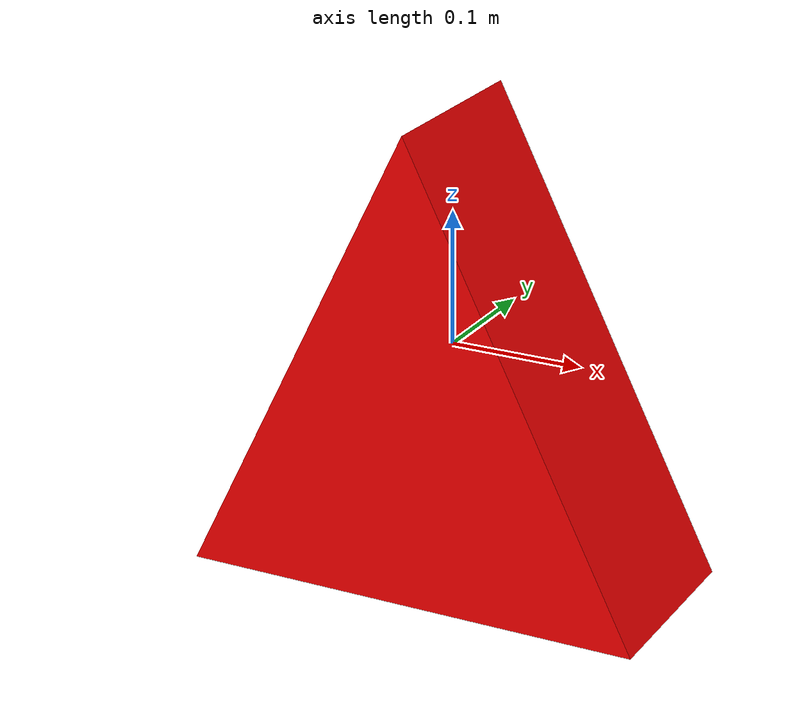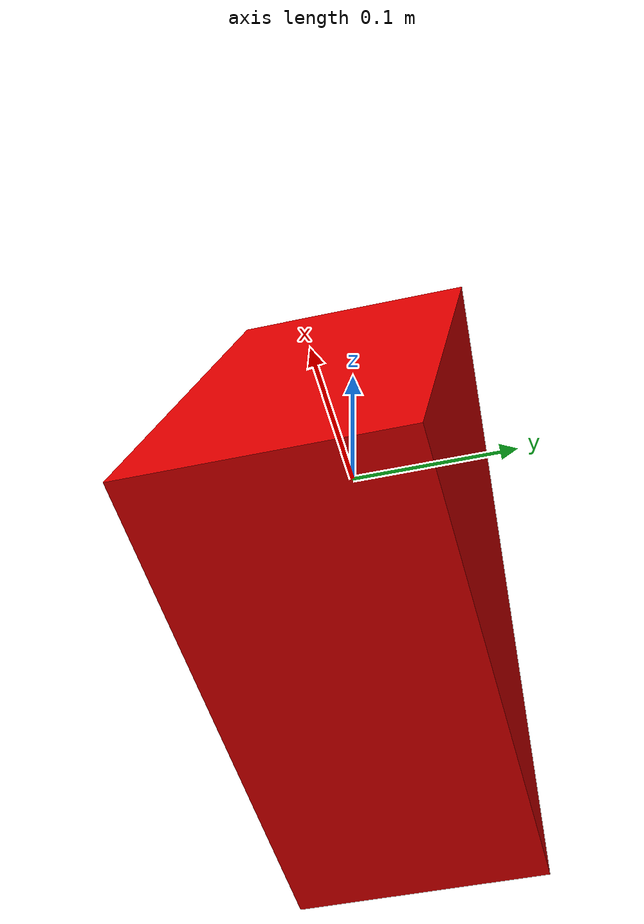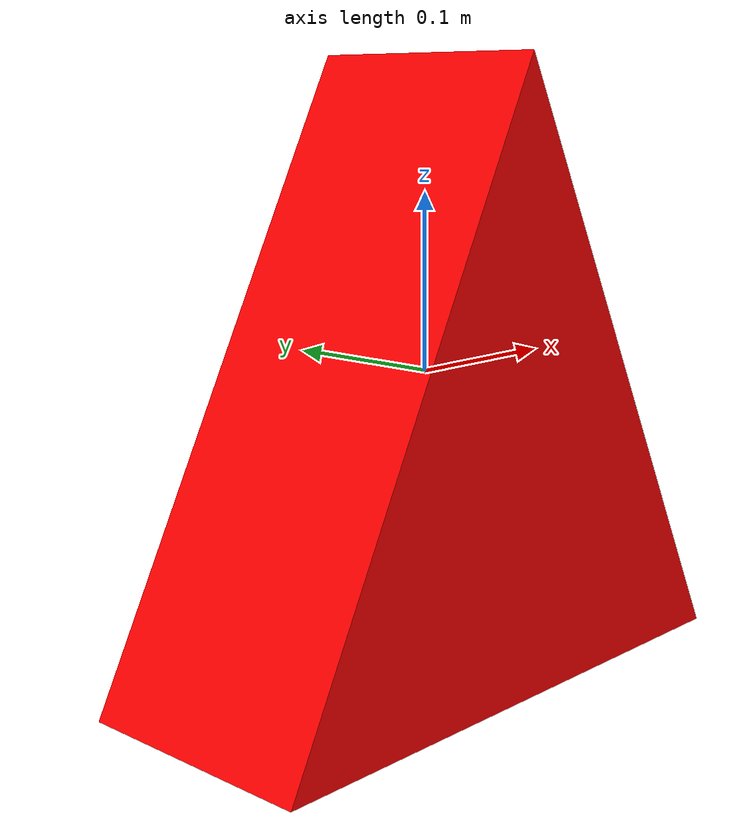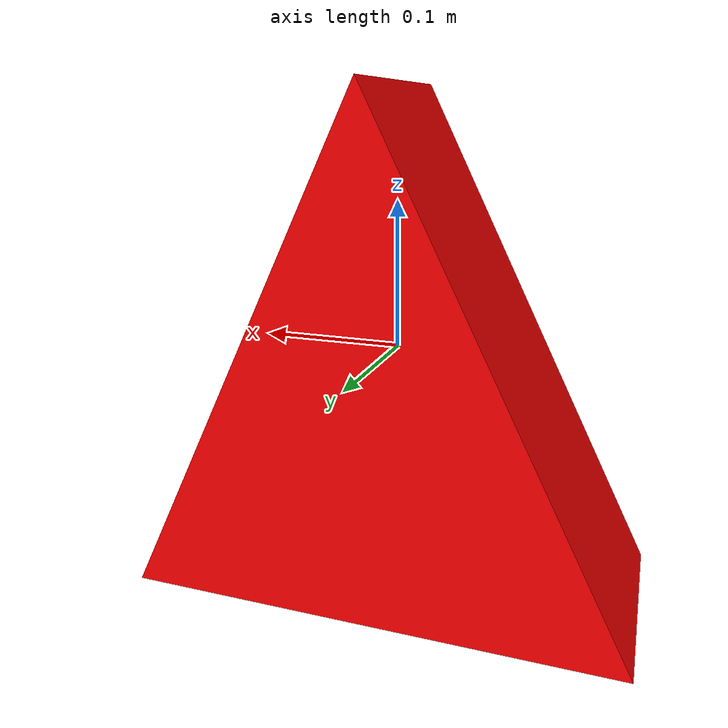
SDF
<?xml version='1.0' encoding='utf-8'?>
<sdf version="1.9">
  <model name="target_red_triangle_bedroom1">
    <static>true</static>
    <link name="target">
      <collision name="collision">
        <geometry>
          <mesh>
            <uri>model://target_red_triangle_bedroom1/meshes/triangle.dae</uri>
          </mesh>
        </geometry>
      </collision>
      <visual name="visual">
        <geometry>
          <mesh>
            <uri>model://target_red_triangle_bedroom1/meshes/triangle.dae</uri>
          </mesh>
        </geometry>
        <material>
          <ambient>1 0 0 1</ambient>
          <diffuse>1 0 0 1</diffuse>
          <specular>0 0 0 1</specular>
          <pbr>
            <metal>
              <metalness>0</metalness>
              <roughness>1</roughness>
            </metal>
          </pbr>
        </material>
      </visual>
    </link>
  </model>
</sdf>
